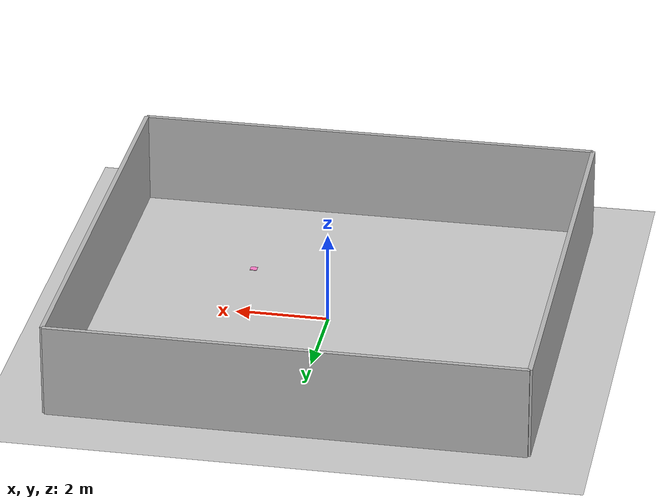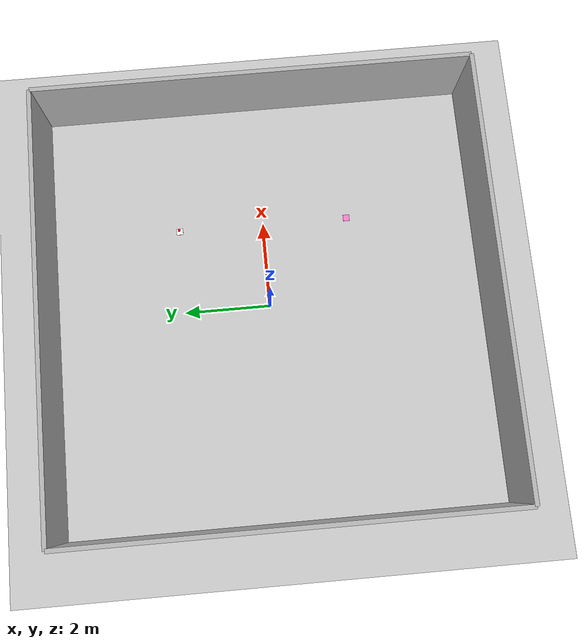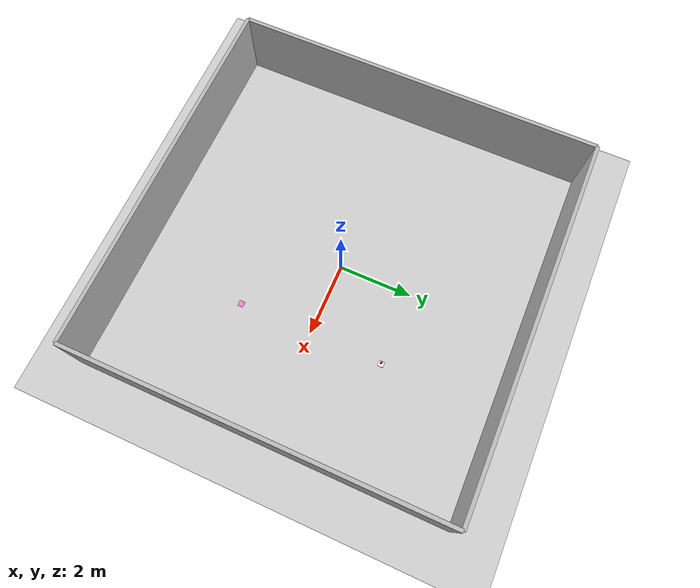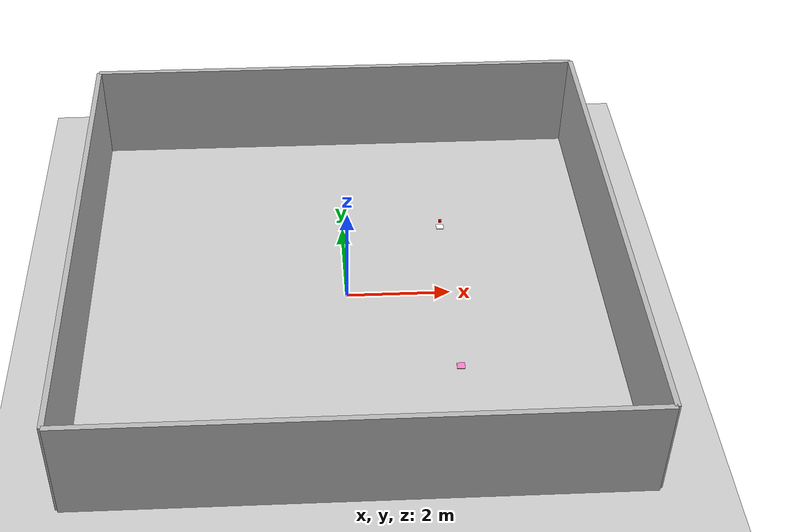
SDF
<?xml version="1.0" ?>

<sdf version="1.9">
  <world name="world1">

    <physics name="default_physics" type="ode">
      <max_step_size>0.001</max_step_size>
      <real_time_factor>1</real_time_factor>
    </physics>

    <plugin
      filename="gz-sim-physics-system"
      name="gz::sim::systems::Physics"/>

    <plugin
      filename="gz-sim-user-commands-system"
      name="gz::sim::systems::UserCommands"/>

    <plugin
      filename="gz-sim-scene-broadcaster-system"
      name="gz::sim::systems::SceneBroadcaster"/>

    <plugin
      filename="gz-sim-sensors-system"
      name="gz::sim::systems::Sensors">
      <render_engine>ogre2</render_engine>
    </plugin>

    <light type="directional" name="sun">
      <cast_shadows>true</cast_shadows>
      <pose>0 0 10 0 0 0</pose>
      <diffuse>0.8 0.8 0.8 1</diffuse>
      <specular>0.2 0.2 0.2 1</specular>
      <attenuation>
        <range>1000</range>
        <constant>0.9</constant>
        <linear>0.01</linear>
        <quadratic>0.001</quadratic>
      </attenuation>
      <direction>-0.5 0.1 -0.9</direction>
    </light>

    <model name="ground_plane">
      <static>true</static>

      <link name="link">
        <collision name="collision">
          <geometry>
            <plane>
              <normal>0 0 1</normal>
              <size>100 100</size>
            </plane>
          </geometry>
        </collision>

        <visual name="visual">
          <geometry>
            <plane>
              <normal>0 0 1</normal>
              <size>100 100</size>
            </plane>
          </geometry>
        </visual>
      </link>
    </model>

    <!-- Walls                                                      -->

    <!-- North wall: y = +5 -->
    <model name="wall_north">
      <static>true</static>
      <pose>0 5 1 0 0 0</pose>

      <link name="wall_link">

        <collision name="collision">
          <geometry>
            <box>
              <size>10 0.1 2</size>
            </box>
          </geometry>
        </collision>

        <visual name="visual">
          <geometry>
            <box>
              <size>10 0.1 2</size>
            </box>
          </geometry>
        </visual>

      </link>
    </model>

    <!-- South wall: y = -5 -->
    <model name="wall_south">
      <static>true</static>
      <pose>0 -5 1 0 0 0</pose>

      <link name="wall_link">

        <collision name="collision">
          <geometry>
            <box>
              <size>10 0.1 2</size>
            </box>
          </geometry>
        </collision>

        <visual name="visual">
          <geometry>
            <box>
              <size>10 0.1 2</size>
            </box>
          </geometry>
        </visual>

      </link>
    </model>

    <!-- East wall: x = +5 -->
    <model name="wall_east">
      <static>true</static>
      <pose>5 0 1 0 0 0</pose>

      <link name="wall_link">

        <collision name="collision">
          <geometry>
            <box>
              <size>0.1 10 2</size>
            </box>
          </geometry>
        </collision>

        <visual name="visual">
          <geometry>
            <box>
              <size>0.1 10 2</size>
            </box>
          </geometry>
        </visual>

      </link>
    </model>

    <!-- West wall: x = -5 -->
    <model name="wall_west">
      <static>true</static>
      <pose>-5 0 1 0 0 0</pose>

      <link name="wall_link">

        <collision name="collision">
          <geometry>
            <box>
              <size>0.1 10 2</size>
            </box>
          </geometry>
        </collision>

        <visual name="visual">
          <geometry>
            <box>
              <size>0.1 10 2</size>
            </box>
          </geometry>
        </visual>

      </link>
    </model>

    <!-- PICK TABLE                                                 -->

    <!--
      Table center:
        x = 2.0
        y = 2.0
        z = 0

      Table top:
        z = 1.5

      Table dimensions:
        1.5 x 1.2 x 0.1
    -->

    <model name="pick_table">
      <static>true</static>
      <pose>2.0 2.0 0 0 0 0</pose>

      <link name="table_link">

        <!-- Table top -->
        <collision name="top_collision">
          <pose>0 0 0 0 0 0</pose>
          <geometry>
            <box>
              <size>0.15 0.15 0.01</size>
            </box>
          </geometry>
        </collision>

        <visual name="top_visual">
          <pose>0 0 0 0 0 0</pose>
          <geometry>
            <box>
              <size>0.15 0.15 0.01</size>
            </box>
          </geometry>
          <material>
            <ambient>1 1 1 1</ambient>
            <diffuse>1 1 1 1</diffuse>
            <specular>0.1 0.1 0.1 1</specular>
          </material>

        </visual>

      </link>
    </model>

    <!-- OBJECT TO PICK                                             -->

    <model name="pick_object">
      <pose>2.0 2.0 0.15 0 0 0</pose>

      <link name="object_link">

        <inertial>
          <mass>0.2</mass>

          <inertia>
            <ixx>0.001333</ixx>
            <iyy>0.001333</iyy>
            <izz>0.001333</izz>
            <ixy>0</ixy>
            <ixz>0</ixz>
            <iyz>0</iyz>
          </inertia>
        </inertial>

        <collision name="collision">
          <geometry>
            <box>
              <size>0.05 0.05 0.05</size>
            </box>
          </geometry>
        </collision>

        <visual name="visual">
          <geometry>
            <box>
              <size>0.05 0.05 0.05</size>
            </box>
          </geometry>
          <material>
            <ambient>1 0 0 1</ambient>
            <diffuse>1 0 0 1</diffuse>
            <specular>0.1 0.1 0.1 1</specular>
          </material>

        </visual>

      </link>
    </model>

    <!-- PLACE TABLE                                                -->

    <model name="place_table">
      <static>true</static>
      <pose>2.0 -2.0 0 0 0 0</pose>

      <link name="table_link">

        <collision name="top_collision">
          <pose>0 0 0 0 0 0</pose>
          <geometry>
            <box>
              <size>0.15 0.15 0.01</size>
            </box>
          </geometry>
        </collision>

        <visual name="top_visual">
          <pose>0 0 0 0 0 0</pose>
          <geometry>
            <box>
              <size>0.15 0.15 0.01</size>
            </box>
          </geometry>
          <material>
            <ambient>1 0.5 0.8 1</ambient>
            <diffuse>1 0.5 0.8 1</diffuse>
            <specular>0.1 0.1 0.1 1</specular>
          </material>
        </visual>

      </link>
    </model>
  </world>
</sdf>
